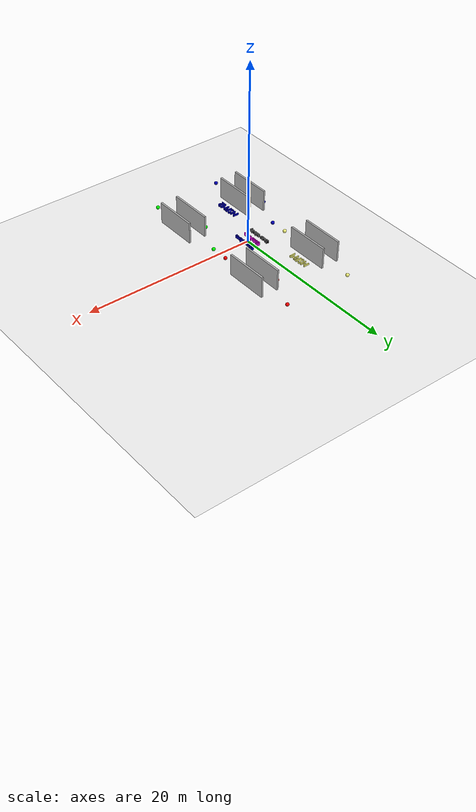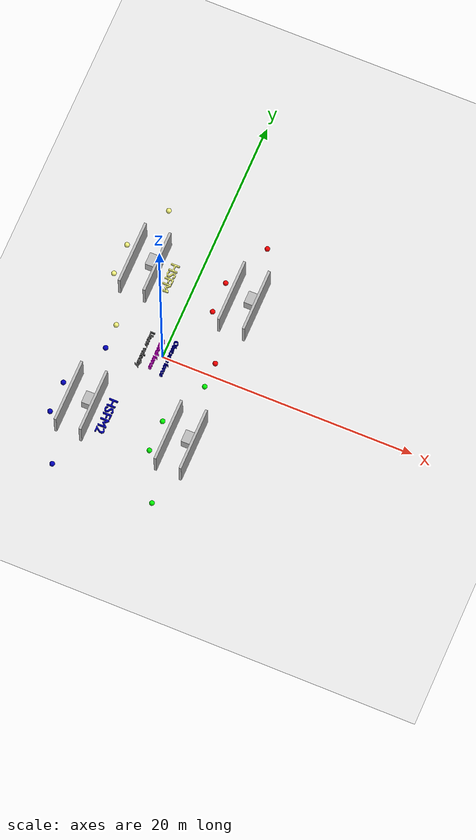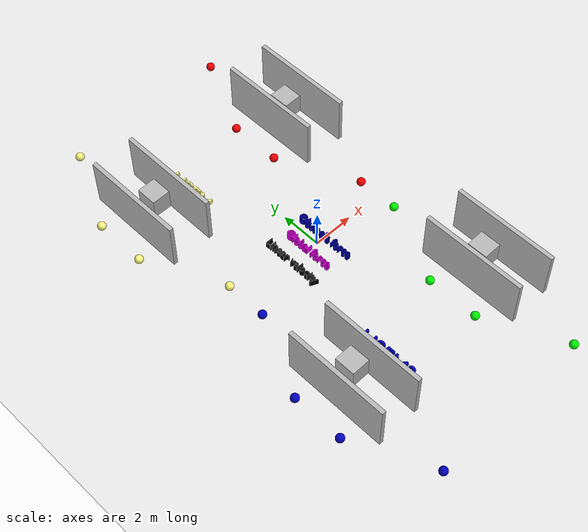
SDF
<sdf version="1.6">
 <world name="world">
  <plugin name="gazebo_ros_state" filename="libgazebo_ros_state.so">
   <ros>
    <namespace>/demo</namespace>
    <remapping>model_states:=model_states_demo</remapping>
    <remapping>link_states:=link_states_demo</remapping>
   </ros>
   <update_rate>1.0</update_rate>
  </plugin>
  <gravity>0 0 -9.8</gravity>
  <physics default="0" name="default_physics" type="ode">
   <max_step_size>0.001</max_step_size>
   <real_time_factor>1</real_time_factor>
   <real_time_update_rate>1000</real_time_update_rate>
  </physics>
  <scene>
   <ambient>0.6 0.6 0.6 1</ambient>
   <background>0.4 0.4 0.4 1</background>
   <shadows>false</shadows>
   <grid>false</grid>
   <origin_visual>false</origin_visual>
  </scene>
  <include><uri>model://sun</uri></include>
  <include><uri>model://ground_plane</uri><pose>0 0 -0.1 0 -0 0</pose></include>
  <model name="HSFM">
   <allow_auto_disable>false</allow_auto_disable>
   <static>true</static>
   <pose>-2 6 0.05 0 0 -1.5707</pose>
   <static>true</static>
   <link name="HSFM_link">
    <collision name="HSFM_collision">
     <geometry><mesh><uri>model://HSFM.stl</uri><scale>1 1 1</scale></mesh></geometry>
    </collision>
    <visual name="HSFM_visual">
     <geometry><mesh><uri>model://HSFM.stl</uri><scale>1 1 1</scale></mesh></geometry>
     <material><diffuse>1 1 0.5 1</diffuse><ambient>1 1 0.5 1</ambient></material>
    </visual>
   </link>
  </model>
  <model name="HSFM2">
   <allow_auto_disable>false</allow_auto_disable>
   <static>true</static>
   <pose>-2 -6 0.05 0 0 -1.5707</pose>
   <static>true</static>
   <link name="HSFM2_link">
    <collision name="HSFM2_collision">
     <geometry><mesh><uri>model://HSFM2.stl</uri><scale>1 1 1</scale></mesh></geometry>
    </collision>
    <visual name="HSFM2_visual">
     <geometry><mesh><uri>model://HSFM2.stl</uri><scale>1 1 1</scale></mesh></geometry>
     <material><diffuse>0 0 0.75 1</diffuse><ambient>0 0 0.75 1</ambient></material>
    </visual>
   </link>
  </model>
  <model name="obstacle_force">
   <allow_auto_disable>false</allow_auto_disable>
   <static>true</static>
   <pose>0.5 0 0.05 0 0 -1.5707</pose>
   <static>true</static>
   <link name="obstacle_force_link">
    <collision name="obstacle_force_collision">
     <geometry><mesh><uri>model://obstacle_force.stl</uri><scale>1.5 1.5 1.5</scale></mesh></geometry>
    </collision>
    <visual name="obstacle_force_visual">
     <geometry><mesh><uri>model://obstacle_force.stl</uri><scale>1.5 1.5 1.5</scale></mesh></geometry>
     <material><diffuse>0 0 0.75 1</diffuse><ambient>0 0 0.75 1</ambient></material>
    </visual>
   </link>
  </model>
  <model name="global_force">
   <allow_auto_disable>false</allow_auto_disable>
   <static>true</static>
   <pose>-0.5 0 0.05 0 0 -1.5707</pose>
   <static>true</static>
   <link name="global_force_link">
    <collision name="global_force_collision">
     <geometry><mesh><uri>model://global_force.stl</uri><scale>1.5 1.5 1.5</scale></mesh></geometry>
    </collision>
    <visual name="global_force_visual">
     <geometry><mesh><uri>model://global_force.stl</uri><scale>1.5 1.5 1.5</scale></mesh></geometry>
     <material><diffuse>1 0 1</diffuse><ambient>1 0 1</ambient><specular>0.1 0.1 0.1 1 1</specular></material>
    </visual>
   </link>
  </model>
  <model name="linear_velocity">
   <allow_auto_disable>false</allow_auto_disable>
   <static>true</static>
   <pose>-1.5 0 0.05 0 0 -1.5707</pose>
   <static>true</static>
   <link name="linear_velocity_link">
    <collision name="linear_velocity_collision">
     <geometry><mesh><uri>model://linear_velocity.stl</uri><scale>1.5 1.5 1.5</scale></mesh></geometry>
    </collision>
    <visual name="linear_velocity_visual">
     <geometry><mesh><uri>model://linear_velocity.stl</uri><scale>1.5 1.5 1.5</scale></mesh></geometry>
     <material>
      <diffuse>0.01 0.01 0.01</diffuse>
      <ambient>0.01 0.01 0.01</ambient>
      <specular>0.1 0.1 0.1 1 1</specular>
     </material>
    </visual>
   </link>
  </model>
  <model name="left_corridor_wall1">
   <allow_auto_disable>false</allow_auto_disable>
   <static>true</static>
   <pose>5 6 1.2 0 0 0</pose>
   <static>true</static>
   <link name="left_corridor_wall1_link">
    <collision name="left_corridor_wall1_collision">
     <geometry><box><size>0.2 5 2.4</size></box></geometry>
    </collision>
    <visual name="left_corridor_wall1_visual"><geometry><box><size>0.2 5 2.4</size></box></geometry></visual>
   </link>
  </model>
  <model name="right_corridor_wall1">
   <allow_auto_disable>false</allow_auto_disable>
   <static>true</static>
   <pose>3 6 1.2 0 0 0</pose>
   <static>true</static>
   <link name="right_corridor_wall1_link">
    <collision name="right_corridor_wall1_collision">
     <geometry><box><size>0.2 5 2.4</size></box></geometry>
    </collision>
    <visual name="right_corridor_wall1_visual"><geometry><box><size>0.2 5 2.4</size></box></geometry></visual>
   </link>
  </model>
  <model name="obstacle1">
   <allow_auto_disable>false</allow_auto_disable>
   <static>true</static>
   <pose>4.5 6.5 0.5 0 0 0</pose>
   <static>true</static>
   <link name="obstacle1_link">
    <collision name="obstacle1_collision"><geometry><box><size>1 1 1</size></box></geometry></collision>
    <visual name="obstacle1_visual"><geometry><box><size>1 1 1</size></box></geometry></visual>
   </link>
  </model>
  <model name="left_corridor_wall2">
   <allow_auto_disable>false</allow_auto_disable>
   <static>true</static>
   <pose>5 -6 1.2 0 0 0</pose>
   <static>true</static>
   <link name="left_corridor_wall2_link">
    <collision name="left_corridor_wall2_collision">
     <geometry><box><size>0.2 5 2.4</size></box></geometry>
    </collision>
    <visual name="left_corridor_wall2_visual"><geometry><box><size>0.2 5 2.4</size></box></geometry></visual>
   </link>
  </model>
  <model name="right_corridor_wall2">
   <allow_auto_disable>false</allow_auto_disable>
   <static>true</static>
   <pose>3 -6 1.2 0 0 0</pose>
   <static>true</static>
   <link name="right_corridor_wall2_link">
    <collision name="right_corridor_wall2_collision">
     <geometry><box><size>0.2 5 2.4</size></box></geometry>
    </collision>
    <visual name="right_corridor_wall2_visual"><geometry><box><size>0.2 5 2.4</size></box></geometry></visual>
   </link>
  </model>
  <model name="obstacle2">
   <allow_auto_disable>false</allow_auto_disable>
   <static>true</static>
   <pose>4.5 -5.5 0.5 0 0 0</pose>
   <static>true</static>
   <link name="obstacle2_link">
    <collision name="obstacle2_collision"><geometry><box><size>1 1 1</size></box></geometry></collision>
    <visual name="obstacle2_visual"><geometry><box><size>1 1 1</size></box></geometry></visual>
   </link>
  </model>
  <model name="left_corridor_wall3">
   <allow_auto_disable>false</allow_auto_disable>
   <static>true</static>
   <pose>-3 -6 1.2 0 0 0</pose>
   <static>true</static>
   <link name="left_corridor_wall3_link">
    <collision name="left_corridor_wall3_collision">
     <geometry><box><size>0.2 5 2.4</size></box></geometry>
    </collision>
    <visual name="left_corridor_wall3_visual"><geometry><box><size>0.2 5 2.4</size></box></geometry></visual>
   </link>
  </model>
  <model name="right_corridor_wall3">
   <allow_auto_disable>false</allow_auto_disable>
   <static>true</static>
   <pose>-5 -6 1.2 0 0 0</pose>
   <static>true</static>
   <link name="right_corridor_wall3_link">
    <collision name="right_corridor_wall3_collision">
     <geometry><box><size>0.2 5 2.4</size></box></geometry>
    </collision>
    <visual name="right_corridor_wall3_visual"><geometry><box><size>0.2 5 2.4</size></box></geometry></visual>
   </link>
  </model>
  <model name="obstacle3">
   <allow_auto_disable>false</allow_auto_disable>
   <static>true</static>
   <pose>-3.5 -5.5 0.5 0 0 0</pose>
   <static>true</static>
   <link name="obstacle3_link">
    <collision name="obstacle3_collision"><geometry><box><size>1 1 1</size></box></geometry></collision>
    <visual name="obstacle3_visual"><geometry><box><size>1 1 1</size></box></geometry></visual>
   </link>
  </model>
  <model name="left_corridor_wall4">
   <allow_auto_disable>false</allow_auto_disable>
   <static>true</static>
   <pose>-3 6 1.2 0 0 0</pose>
   <static>true</static>
   <link name="left_corridor_wall4_link">
    <collision name="left_corridor_wall4_collision">
     <geometry><box><size>0.2 5 2.4</size></box></geometry>
    </collision>
    <visual name="left_corridor_wall4_visual"><geometry><box><size>0.2 5 2.4</size></box></geometry></visual>
   </link>
  </model>
  <model name="right_corridor_wall4">
   <allow_auto_disable>false</allow_auto_disable>
   <static>true</static>
   <pose>-5 6 1.2 0 0 0</pose>
   <static>true</static>
   <link name="right_corridor_wall4_link">
    <collision name="right_corridor_wall4_collision">
     <geometry><box><size>0.2 5 2.4</size></box></geometry>
    </collision>
    <visual name="right_corridor_wall4_visual"><geometry><box><size>0.2 5 2.4</size></box></geometry></visual>
   </link>
  </model>
  <model name="obstacle4">
   <allow_auto_disable>false</allow_auto_disable>
   <static>true</static>
   <pose>-3.5 6.5 0.5 0 0 0</pose>
   <static>true</static>
   <link name="obstacle4_link">
    <collision name="obstacle4_collision"><geometry><box><size>1 1 1</size></box></geometry></collision>
    <visual name="obstacle4_visual"><geometry><box><size>1 1 1</size></box></geometry></visual>
   </link>
  </model>
  <model name="actor1_collision_model">
   <allow_auto_disable>false</allow_auto_disable>
   <pose>0 0 -100 0 0 0</pose>
   <static>true</static>
   <link name="link">
    <collision name="link">
     <pose>0 -0.18 0.05 0 0 0</pose>
     <geometry><box><size>0.60 1.40 0.44</size></box></geometry>
    </collision>
    <visual name="link_visual">
     <pose>0 0 0 -1.5707 -1.5707 0</pose>
     <geometry><box><size>0.01 0.01 0.01</size></box></geometry>
     <plugin name="actor1_forces_visualization" filename="libVisualizeForcesPlugin.so">
      <node_name>Actor1Node_Visual</node_name>
      <topic_name>/forces/actor1</topic_name>
      <headed>false</headed>
     </plugin>
    </visual>
   </link>
  </model>
  <model name="actor2_collision_model">
   <allow_auto_disable>false</allow_auto_disable>
   <pose>0 0 -101 0 0 0</pose>
   <static>true</static>
   <link name="link2">
    <collision name="link2">
     <pose>0 -0.18 0.05 0 0 0</pose>
     <geometry><box><size>0.60 1.40 0.44</size></box></geometry>
    </collision>
    <visual name="link2_visual">
     <pose>0 0 0 -1.5707 -1.5707 0</pose>
     <geometry><box><size>0.01 0.01 0.01</size></box></geometry>
     <plugin name="actor2_forces_visualization" filename="libVisualizeForcesPlugin.so">
      <node_name>Actor2Node_Visual</node_name>
      <topic_name>/forces/actor2</topic_name>
      <headed>false</headed>
     </plugin>
    </visual>
   </link>
  </model>
  <model name="actor3_collision_model">
   <allow_auto_disable>false</allow_auto_disable>
   <pose>0 0 -101 0 0 0</pose>
   <static>true</static>
   <link name="link3">
    <collision name="link3">
     <pose>0 -0.18 0.05 0 0 0</pose>
     <geometry><box><size>0.60 1.40 0.44</size></box></geometry>
    </collision>
    <visual name="link3_visual">
     <pose>0 0 0 -1.5707 -1.5707 0</pose>
     <geometry><box><size>0.01 0.01 0.01</size></box></geometry>
     <plugin name="actor3_forces_visualization" filename="libVisualizeForcesPlugin.so">
      <node_name>Actor3Node_Visual</node_name>
      <topic_name>/forces/actor3</topic_name>
      <headed>true</headed>
     </plugin>
    </visual>
   </link>
  </model>
  <model name="actor4_collision_model">
   <allow_auto_disable>false</allow_auto_disable>
   <pose>0 0 -101 0 0 0</pose>
   <static>true</static>
   <link name="link4">
    <collision name="link4">
     <pose>0 -0.18 0.05 0 0 0</pose>
     <geometry><box><size>0.60 1.40 0.44</size></box></geometry>
    </collision>
    <visual name="link4_visual">
     <pose>0 0 0 -1.5707 -1.5707 0</pose>
     <geometry><box><size>0.01 0.01 0.01</size></box></geometry>
     <plugin name="actor4_forces_visualization" filename="libVisualizeForcesPlugin.so">
      <node_name>Actor4Node_Visual</node_name>
      <topic_name>/forces/actor4</topic_name>
      <headed>true</headed>
     </plugin>
    </visual>
   </link>
  </model>
  <model name="waypoint1">
   <allow_auto_disable>false</allow_auto_disable>
   <static>true</static>
   <pose>3.8 1 0.05 0 0 0</pose>
   <static>true</static>
   <link name="waypoint1_link">
    <collision name="waypoint1_collision"><geometry><sphere><radius>0.01</radius></sphere></geometry></collision>
    <visual name="waypoint1_visual">
     <geometry><sphere><radius>0.2</radius></sphere></geometry>
     <material><diffuse>1 0 0 1</diffuse><ambient>1 0 0 1</ambient></material>
    </visual>
   </link>
  </model>
  <model name="waypoint2">
   <allow_auto_disable>false</allow_auto_disable>
   <static>true</static>
   <pose>2 4.75 0.05 0 0 0</pose>
   <static>true</static>
   <link name="waypoint2_link">
    <collision name="waypoint2_collision"><geometry><sphere><radius>0.01</radius></sphere></geometry></collision>
    <visual name="waypoint2_visual">
     <geometry><sphere><radius>0.2</radius></sphere></geometry>
     <material><diffuse>1 0 0 1</diffuse><ambient>1 0 0 1</ambient></material>
    </visual>
   </link>
  </model>
  <model name="waypoint3">
   <allow_auto_disable>false</allow_auto_disable>
   <static>true</static>
   <pose>2 7.25 0.05 0 0 0</pose>
   <static>true</static>
   <link name="waypoint3_link">
    <collision name="waypoint3_collision"><geometry><sphere><radius>0.01</radius></sphere></geometry></collision>
    <visual name="waypoint3_visual">
     <geometry><sphere><radius>0.2</radius></sphere></geometry>
     <material><diffuse>1 0 0 1</diffuse><ambient>1 0 0 1</ambient></material>
    </visual>
   </link>
  </model>
  <model name="waypoint4">
   <allow_auto_disable>false</allow_auto_disable>
   <static>true</static>
   <pose>3.8 11 0.05 0 0 0</pose>
   <static>true</static>
   <link name="waypoint4_link">
    <collision name="waypoint4_collision"><geometry><sphere><radius>0.01</radius></sphere></geometry></collision>
    <visual name="waypoint4_visual">
     <geometry><sphere><radius>0.2</radius></sphere></geometry>
     <material><diffuse>1 0 0 1</diffuse><ambient>1 0 0 1</ambient></material>
    </visual>
   </link>
  </model>
  <model name="waypoint5">
   <allow_auto_disable>false</allow_auto_disable>
   <static>true</static>
   <pose>3.8 -11 0.05 0 0 0</pose>
   <static>true</static>
   <link name="waypoint5_link">
    <collision name="waypoint5_collision"><geometry><sphere><radius>0.01</radius></sphere></geometry></collision>
    <visual name="waypoint5_visual">
     <geometry><sphere><radius>0.2</radius></sphere></geometry>
     <material><diffuse>0 1 0 1</diffuse><ambient>0 1 0 1</ambient></material>
    </visual>
   </link>
  </model>
  <model name="waypoint6">
   <allow_auto_disable>false</allow_auto_disable>
   <static>true</static>
   <pose>2 -7.25 0.05 0 0 0</pose>
   <static>true</static>
   <link name="waypoint6_link">
    <collision name="waypoint6_collision"><geometry><sphere><radius>0.01</radius></sphere></geometry></collision>
    <visual name="waypoint6_visual">
     <geometry><sphere><radius>0.2</radius></sphere></geometry>
     <material><diffuse>0 1 0 1</diffuse><ambient>0 1 0 1</ambient></material>
    </visual>
   </link>
  </model>
  <model name="waypoint7">
   <allow_auto_disable>false</allow_auto_disable>
   <static>true</static>
   <pose>2 -4.75 0.05 0 0 0</pose>
   <static>true</static>
   <link name="waypoint7_link">
    <collision name="waypoint7_collision"><geometry><sphere><radius>0.01</radius></sphere></geometry></collision>
    <visual name="waypoint7_visual">
     <geometry><sphere><radius>0.2</radius></sphere></geometry>
     <material><diffuse>0 1 0 1</diffuse><ambient>0 1 0 1</ambient></material>
    </visual>
   </link>
  </model>
  <model name="waypoint8">
   <allow_auto_disable>false</allow_auto_disable>
   <static>true</static>
   <pose>3.8 -1 0.05 0 0 0</pose>
   <static>true</static>
   <link name="waypoint8_link">
    <collision name="waypoint8_collision"><geometry><sphere><radius>0.01</radius></sphere></geometry></collision>
    <visual name="waypoint8_visual">
     <geometry><sphere><radius>0.2</radius></sphere></geometry>
     <material><diffuse>0 1 0 1</diffuse><ambient>0 1 0 1</ambient></material>
    </visual>
   </link>
  </model>
  <model name="waypoint9">
   <allow_auto_disable>false</allow_auto_disable>
   <static>true</static>
   <pose>-4.2 -11 0.05 0 0 0</pose>
   <static>true</static>
   <link name="waypoint9_link">
    <collision name="waypoint9_collision"><geometry><sphere><radius>0.01</radius></sphere></geometry></collision>
    <visual name="waypoint9_visual">
     <geometry><sphere><radius>0.2</radius></sphere></geometry>
     <material><diffuse>0 0 0.75 1</diffuse><ambient>0 0 0.75 1</ambient></material>
    </visual>
   </link>
  </model>
  <model name="waypoint10">
   <allow_auto_disable>false</allow_auto_disable>
   <static>true</static>
   <pose>-6 -7.25 0.05 0 0 0</pose>
   <static>true</static>
   <link name="waypoint10_link">
    <collision name="waypoint10_collision"><geometry><sphere><radius>0.01</radius></sphere></geometry></collision>
    <visual name="waypoint10_visual">
     <geometry><sphere><radius>0.2</radius></sphere></geometry>
     <material><diffuse>0 0 0.75 1</diffuse><ambient>0 0 0.75 1</ambient></material>
    </visual>
   </link>
  </model>
  <model name="waypoint11">
   <allow_auto_disable>false</allow_auto_disable>
   <static>true</static>
   <pose>-6 -4.75 0.05 0 0 0</pose>
   <static>true</static>
   <link name="waypoint11_link">
    <collision name="waypoint11_collision"><geometry><sphere><radius>0.01</radius></sphere></geometry></collision>
    <visual name="waypoint11_visual">
     <geometry><sphere><radius>0.2</radius></sphere></geometry>
     <material><diffuse>0 0 0.75 1</diffuse><ambient>0 0 0.75 1</ambient></material>
    </visual>
   </link>
  </model>
  <model name="waypoint12">
   <allow_auto_disable>false</allow_auto_disable>
   <static>true</static>
   <pose>-4.2 -1 0.05 0 0 0</pose>
   <static>true</static>
   <link name="waypoint12_link">
    <collision name="waypoint12_collision"><geometry><sphere><radius>0.01</radius></sphere></geometry></collision>
    <visual name="waypoint12_visual">
     <geometry><sphere><radius>0.2</radius></sphere></geometry>
     <material><diffuse>0 0 0.75 1</diffuse><ambient>0 0 0.75 1</ambient></material>
    </visual>
   </link>
  </model>
  <model name="waypoint13">
   <allow_auto_disable>false</allow_auto_disable>
   <static>true</static>
   <pose>-4.2 1 0.05 0 0 0</pose>
   <static>true</static>
   <link name="waypoint13_link">
    <collision name="waypoint13_collision"><geometry><sphere><radius>0.01</radius></sphere></geometry></collision>
    <visual name="waypoint13_visual">
     <geometry><sphere><radius>0.2</radius></sphere></geometry>
     <material><diffuse>1 1 0.5 1</diffuse><ambient>1 1 0.5 1</ambient></material>
    </visual>
   </link>
  </model>
  <model name="waypoint14">
   <allow_auto_disable>false</allow_auto_disable>
   <static>true</static>
   <pose>-6 4.75 0.05 0 0 0</pose>
   <static>true</static>
   <link name="waypoint14_link">
    <collision name="waypoint14_collision"><geometry><sphere><radius>0.01</radius></sphere></geometry></collision>
    <visual name="waypoint14_visual">
     <geometry><sphere><radius>0.2</radius></sphere></geometry>
     <material><diffuse>1 1 0.5 1</diffuse><ambient>1 1 0.5 1</ambient></material>
    </visual>
   </link>
  </model>
  <model name="waypoint15">
   <allow_auto_disable>false</allow_auto_disable>
   <static>true</static>
   <pose>-6 7.25 0.05 0 0 0</pose>
   <static>true</static>
   <link name="waypoint15_link">
    <collision name="waypoint15_collision"><geometry><sphere><radius>0.01</radius></sphere></geometry></collision>
    <visual name="waypoint15_visual">
     <geometry><sphere><radius>0.2</radius></sphere></geometry>
     <material><diffuse>1 1 0.5 1</diffuse><ambient>1 1 0.5 1</ambient></material>
    </visual>
   </link>
  </model>
  <model name="waypoint16">
   <allow_auto_disable>false</allow_auto_disable>
   <static>true</static>
   <pose>-4.2 11 0.05 0 0 0</pose>
   <static>true</static>
   <link name="waypoint16_link">
    <collision name="waypoint16_collision"><geometry><sphere><radius>0.01</radius></sphere></geometry></collision>
    <visual name="waypoint16_visual">
     <geometry><sphere><radius>0.2</radius></sphere></geometry>
     <material><diffuse>1 1 0.5 1</diffuse><ambient>1 1 0.5 1</ambient></material>
    </visual>
   </link>
  </model>
 </world>
</sdf>
